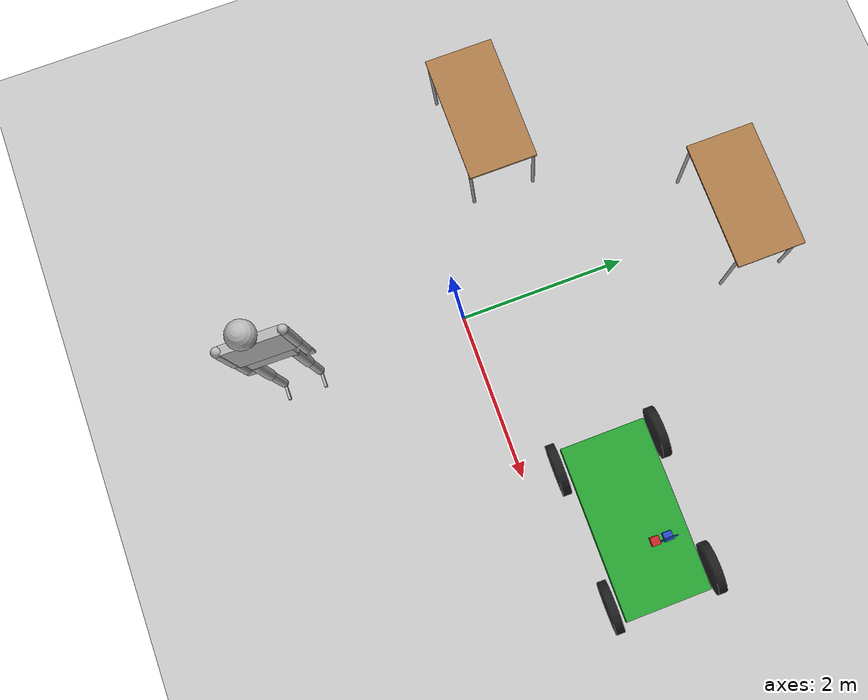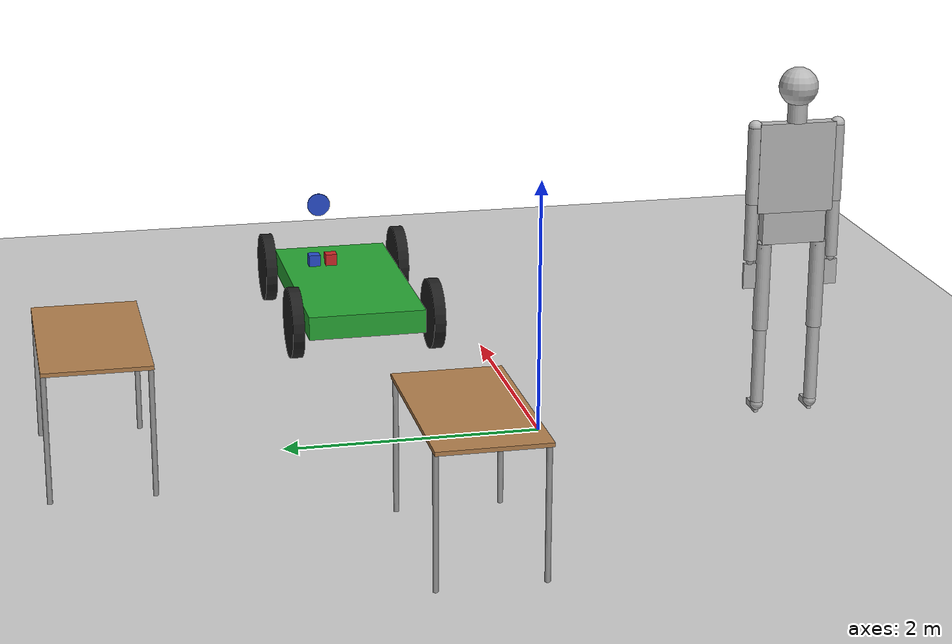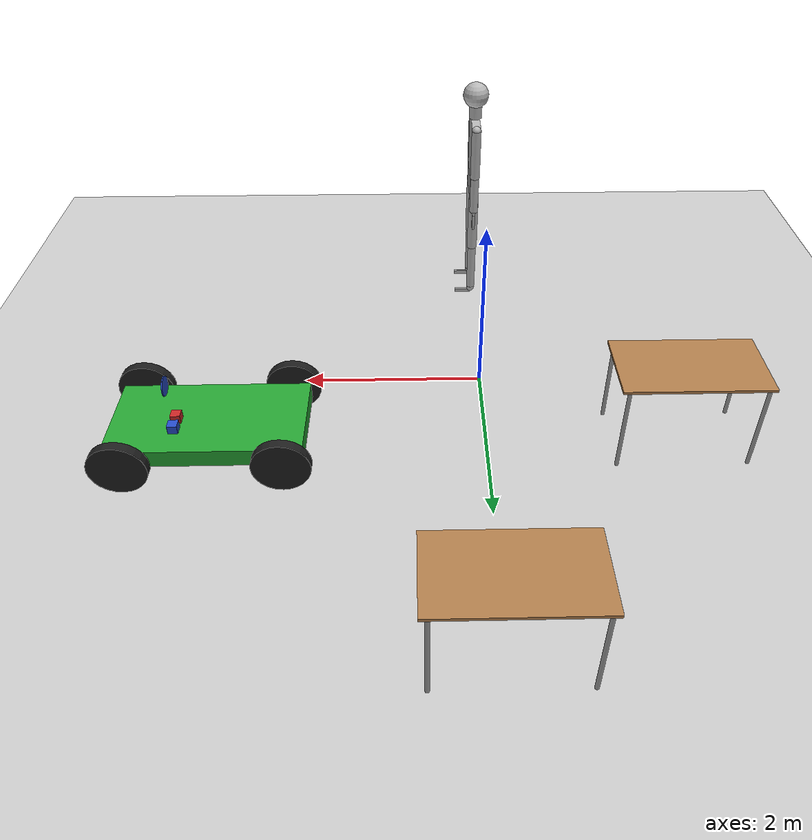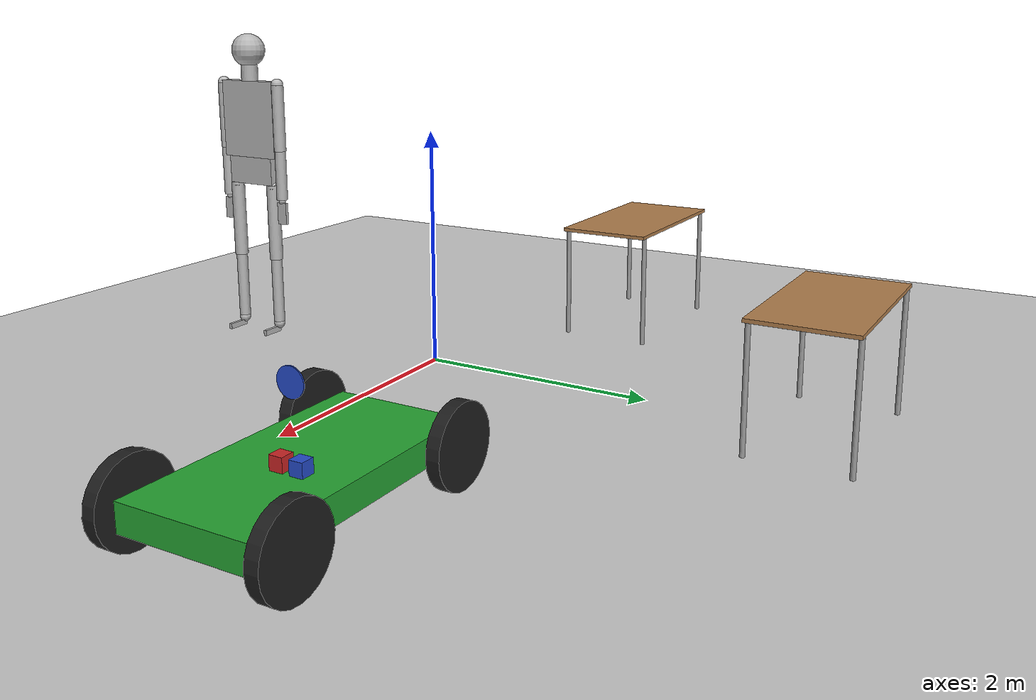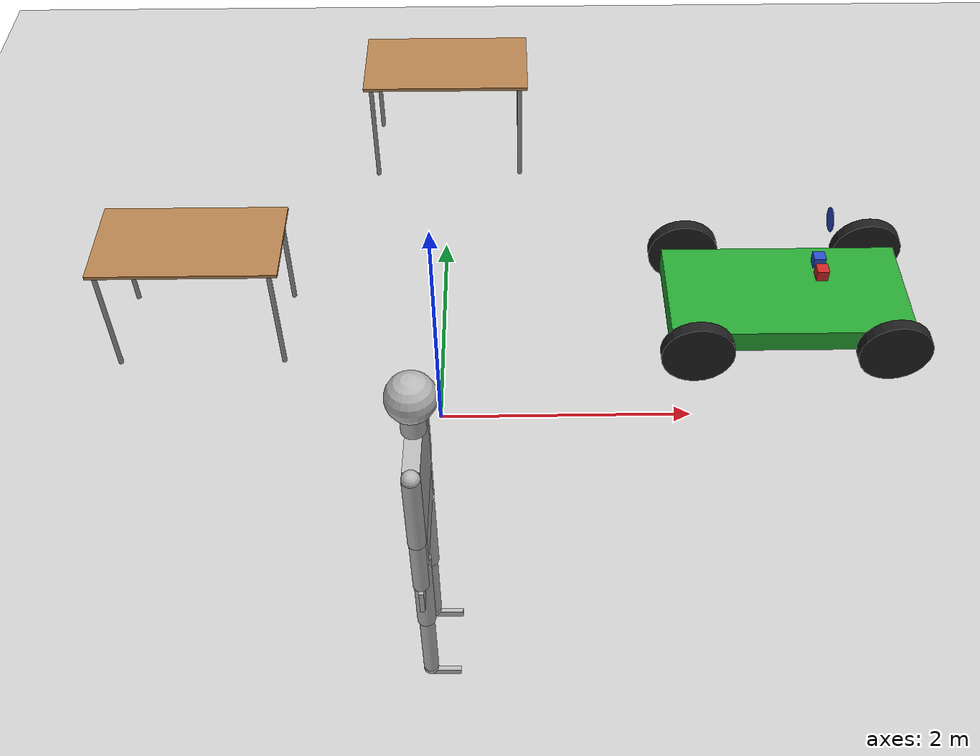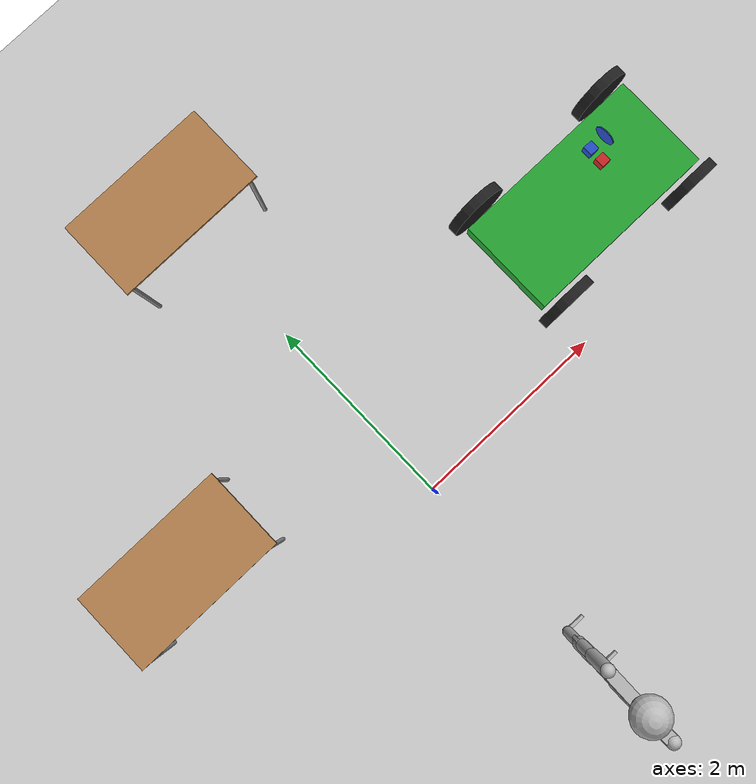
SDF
<sdf version="1.5">
 <world name="default">
  <light name="sun" type="directional">
   <pose>0 0 10 0 -0 0</pose>
   <diffuse>0.8 0.8 0.8 1</diffuse>
   <specular>0.2 0.2 0.2 1</specular>
   <attenuation>
    <range>1000</range>
    <constant>0.9</constant>
    <linear>0.01</linear>
    <quadratic>0.001</quadratic>
   </attenuation>
   <direction>-0.5 0.1 -0.9</direction>
  </light>
  <model name="ground_plane">
   <static>1</static>
   <link name="link">
    <collision name="collision">
     <laser_retro>50</laser_retro>
     <geometry><plane><normal>0 0 1</normal><size>100 100</size></plane></geometry>
     <surface><friction><ode><mu>100</mu><mu2>50</mu2></ode></friction></surface>
    </collision>
    <visual name="visual">
     <cast_shadows>0</cast_shadows>
     <geometry><plane><normal>0 0 1</normal><size>100 100</size></plane></geometry>
     <material>
      <script><uri>file://media/materials/scripts/gazebo.material</uri><name>Gazebo/Grey</name></script>
     </material>
    </visual>
   </link>
  </model>
  <physics name="default_physics" default="0" type="ode">
   <max_step_size>0.001</max_step_size>
   <real_time_factor>1</real_time_factor>
   <real_time_update_rate>1000</real_time_update_rate>
   <gravity>0 0 -9.8</gravity>
   <magnetic_field>5.5645e-06 2.28758e-05 -4.23884e-05</magnetic_field>
  </physics>
  <scene><ambient>0.4 0.4 0.4 1</ambient><background>0.7 0.7 0.7 1</background><shadows>1</shadows></scene>
  <audio><device>default</device></audio>
  <spherical_coordinates>
   <surface_model>EARTH_WGS84</surface_model>
   <latitude_deg>0</latitude_deg>
   <longitude_deg>0</longitude_deg>
   <elevation>0</elevation>
   <heading_deg>0</heading_deg>
  </spherical_coordinates>
  <model name="table">
   <static>1</static>
   <link name="link">
    <collision name="surface">
     <laser_retro>255</laser_retro>
     <pose>0 0 1 0 -0 0</pose>
     <geometry><box><size>1.5 0.8 0.03</size></box></geometry>
     <surface><friction><ode><mu>0.6</mu><mu2>0.6</mu2></ode></friction></surface>
    </collision>
    <visual name="visual1">
     <pose>0 0 1 0 -0 0</pose>
     <geometry><box><size>1.5 0.8 0.03</size></box></geometry>
     <material>
      <script><uri>file://media/materials/scripts/gazebo.material</uri><name>Gazebo/Wood</name></script>
     </material>
    </visual>
    <collision name="front_left_leg">
     <laser_retro>255</laser_retro>
     <pose>0.68 0.38 0.5 0 -0 0</pose>
     <geometry><cylinder><radius>0.02</radius><length>1</length></cylinder></geometry>
    </collision>
    <visual name="front_left_leg">
     <pose>0.68 0.38 0.5 0 -0 0</pose>
     <geometry><cylinder><radius>0.02</radius><length>1</length></cylinder></geometry>
     <material>
      <script><uri>file://media/materials/scripts/gazebo.material</uri><name>Gazebo/Grey</name></script>
     </material>
    </visual>
    <collision name="front_right_leg">
     <laser_retro>255</laser_retro>
     <pose>0.68 -0.38 0.5 0 -0 0</pose>
     <geometry><cylinder><radius>0.02</radius><length>1</length></cylinder></geometry>
    </collision>
    <visual name="front_right_leg">
     <laser_retro>255</laser_retro>
     <pose>0.68 -0.38 0.5 0 -0 0</pose>
     <geometry><cylinder><radius>0.02</radius><length>1</length></cylinder></geometry>
     <material>
      <script><uri>file://media/materials/scripts/gazebo.material</uri><name>Gazebo/Grey</name></script>
     </material>
    </visual>
    <collision name="back_right_leg">
     <laser_retro>255</laser_retro>
     <pose>-0.68 -0.38 0.5 0 -0 0</pose>
     <geometry><cylinder><radius>0.02</radius><length>1</length></cylinder></geometry>
    </collision>
    <visual name="back_right_leg">
     <pose>-0.68 -0.38 0.5 0 -0 0</pose>
     <geometry><cylinder><radius>0.02</radius><length>1</length></cylinder></geometry>
     <material>
      <script><uri>file://media/materials/scripts/gazebo.material</uri><name>Gazebo/Grey</name></script>
     </material>
    </visual>
    <collision name="back_left_leg">
     <laser_retro>255</laser_retro>
     <pose>-0.68 0.38 0.5 0 -0 0</pose>
     <geometry><cylinder><radius>0.02</radius><length>1</length></cylinder></geometry>
    </collision>
    <visual name="back_left_leg">
     <pose>-0.68 0.38 0.5 0 -0 0</pose>
     <geometry><cylinder><radius>0.02</radius><length>1</length></cylinder></geometry>
     <material>
      <script><uri>file://media/materials/scripts/gazebo.material</uri><name>Gazebo/Grey</name></script>
     </material>
    </visual>
   </link>
   <pose>-2 1 0 0 -0 0</pose>
  </model>
  <model name="table_0">
   <static>1</static>
   <link name="link">
    <collision name="surface">
     <laser_retro>255</laser_retro>
     <pose>0 0 1 0 -0 0</pose>
     <geometry><box><size>1.5 0.8 0.03</size></box></geometry>
     <surface><friction><ode><mu>0.6</mu><mu2>0.6</mu2></ode></friction></surface>
    </collision>
    <visual name="visual1">
     <pose>0 0 1 0 -0 0</pose>
     <geometry><box><size>1.5 0.8 0.03</size></box></geometry>
     <material>
      <script><uri>file://media/materials/scripts/gazebo.material</uri><name>Gazebo/Wood</name></script>
     </material>
    </visual>
    <collision name="front_left_leg">
     <laser_retro>255</laser_retro>
     <pose>0.68 0.38 0.5 0 -0 0</pose>
     <geometry><cylinder><radius>0.02</radius><length>1</length></cylinder></geometry>
    </collision>
    <visual name="front_left_leg">
     <pose>0.68 0.38 0.5 0 -0 0</pose>
     <geometry><cylinder><radius>0.02</radius><length>1</length></cylinder></geometry>
     <material>
      <script><uri>file://media/materials/scripts/gazebo.material</uri><name>Gazebo/Grey</name></script>
     </material>
    </visual>
    <collision name="front_right_leg">
     <laser_retro>255</laser_retro>
     <pose>0.68 -0.38 0.5 0 -0 0</pose>
     <geometry><cylinder><radius>0.02</radius><length>1</length></cylinder></geometry>
    </collision>
    <visual name="front_right_leg">
     <pose>0.68 -0.38 0.5 0 -0 0</pose>
     <geometry><cylinder><radius>0.02</radius><length>1</length></cylinder></geometry>
     <material>
      <script><uri>file://media/materials/scripts/gazebo.material</uri><name>Gazebo/Grey</name></script>
     </material>
    </visual>
    <collision name="back_right_leg">
     <laser_retro>255</laser_retro>
     <pose>-0.68 -0.38 0.5 0 -0 0</pose>
     <geometry><cylinder><radius>0.02</radius><length>1</length></cylinder></geometry>
    </collision>
    <visual name="back_right_leg">
     <pose>-0.68 -0.38 0.5 0 -0 0</pose>
     <geometry><cylinder><radius>0.02</radius><length>1</length></cylinder></geometry>
     <material>
      <script><uri>file://media/materials/scripts/gazebo.material</uri><name>Gazebo/Grey</name></script>
     </material>
    </visual>
    <collision name="back_left_leg">
     <laser_retro>255</laser_retro>
     <pose>-0.68 0.38 0.5 0 -0 0</pose>
     <geometry><cylinder><radius>0.02</radius><length>1</length></cylinder></geometry>
    </collision>
    <visual name="back_left_leg">
     <pose>-0.68 0.38 0.5 0 -0 0</pose>
     <geometry><cylinder><radius>0.02</radius><length>1</length></cylinder></geometry>
     <material>
      <script><uri>file://media/materials/scripts/gazebo.material</uri><name>Gazebo/Grey</name></script>
     </material>
    </visual>
   </link>
   <pose>0 3.40617 0 0 -0 0</pose>
  </model>
  <model name="car">
   <link name="chassis">
    <pose>0 0 0.3 0 -0 0</pose>
    <collision name="collision">
     <laser_retro>255</laser_retro>
     <geometry><box><size>2 1 0.2</size></box></geometry>
    </collision>
    <visual name="visual">
     <geometry><box><size>2 1 0.2</size></box></geometry>
     <material>
      <script><uri>file://media/materials/scripts/gazebo.material</uri><name>Gazebo/Green</name></script>
     </material>
    </visual>
    <inertial>
     <inertia><ixx>1</ixx><ixy>0</ixy><ixz>0</ixz><iyy>1</iyy><iyz>0</iyz><izz>1</izz></inertia>
     <mass>1</mass>
    </inertial>
   </link>
   <link name="front_left_wheel">
    <pose>0.8 0.6 0.3 0 1.5707 1.5707</pose>
    <collision name="collision">
     <laser_retro>255</laser_retro>
     <geometry><cylinder><radius>0.3</radius><length>0.1</length></cylinder></geometry>
    </collision>
    <visual name="visual">
     <geometry><cylinder><radius>0.3</radius><length>0.1</length></cylinder></geometry>
     <material>
      <script><uri>file://media/materials/scripts/gazebo.material</uri><name>Gazebo/Black</name></script>
     </material>
    </visual>
    <inertial>
     <inertia><ixx>1</ixx><ixy>0</ixy><ixz>0</ixz><iyy>1</iyy><iyz>0</iyz><izz>1</izz></inertia>
     <mass>1</mass>
    </inertial>
   </link>
   <link name="front_right_wheel">
    <pose>0.8 -0.6 0.3 0 1.5707 1.5707</pose>
    <collision name="collision">
     <laser_retro>255</laser_retro>
     <geometry><cylinder><radius>0.3</radius><length>0.1</length></cylinder></geometry>
    </collision>
    <visual name="visual">
     <geometry><cylinder><radius>0.3</radius><length>0.1</length></cylinder></geometry>
     <material>
      <script><uri>file://media/materials/scripts/gazebo.material</uri><name>Gazebo/Black</name></script>
     </material>
    </visual>
    <inertial>
     <inertia><ixx>1</ixx><ixy>0</ixy><ixz>0</ixz><iyy>1</iyy><iyz>0</iyz><izz>1</izz></inertia>
     <mass>1</mass>
    </inertial>
   </link>
   <link name="back_right_wheel">
    <pose>-0.8 -0.6 0.3 0 1.5707 1.5707</pose>
    <collision name="collision">
     <laser_retro>255</laser_retro>
     <geometry><cylinder><radius>0.3</radius><length>0.1</length></cylinder></geometry>
    </collision>
    <visual name="visual">
     <geometry><cylinder><radius>0.3</radius><length>0.1</length></cylinder></geometry>
     <material>
      <script><uri>file://media/materials/scripts/gazebo.material</uri><name>Gazebo/Black</name></script>
     </material>
    </visual>
    <inertial>
     <inertia><ixx>1</ixx><ixy>0</ixy><ixz>0</ixz><iyy>1</iyy><iyz>0</iyz><izz>1</izz></inertia>
     <mass>1</mass>
    </inertial>
   </link>
   <link name="back_left_wheel">
    <pose>-0.8 0.6 0.3 0 1.5707 1.5707</pose>
    <collision name="collision">
     <laser_retro>255</laser_retro>
     <geometry><cylinder><radius>0.3</radius><length>0.1</length></cylinder></geometry>
    </collision>
    <visual name="visual">
     <geometry><cylinder><radius>0.3</radius><length>0.1</length></cylinder></geometry>
     <material>
      <script><uri>file://media/materials/scripts/gazebo.material</uri><name>Gazebo/Black</name></script>
     </material>
    </visual>
    <inertial>
     <inertia><ixx>1</ixx><ixy>0</ixy><ixz>0</ixz><iyy>1</iyy><iyz>0</iyz><izz>1</izz></inertia>
     <mass>1</mass>
    </inertial>
   </link>
   <link name="gas_pedal">
    <pose>0.3 0.1 0.5 0 -0 0</pose>
    <collision name="collision">
     <laser_retro>255</laser_retro>
     <geometry><box><size>0.1 0.1 0.1</size></box></geometry>
    </collision>
    <visual name="visual">
     <geometry><box><size>0.1 0.1 0.1</size></box></geometry>
     <material>
      <script><uri>file://media/materials/scripts/gazebo.material</uri><name>Gazebo/Red</name></script>
     </material>
    </visual>
    <inertial>
     <inertia><ixx>1</ixx><ixy>0</ixy><ixz>0</ixz><iyy>1</iyy><iyz>0</iyz><izz>1</izz></inertia>
     <mass>1</mass>
    </inertial>
   </link>
   <link name="brake_pedal">
    <pose>0.3 0.25 0.5 0 -0 0</pose>
    <collision name="collision">
     <laser_retro>255</laser_retro>
     <geometry><box><size>0.1 0.1 0.1</size></box></geometry>
    </collision>
    <visual name="visual">
     <geometry><box><size>0.1 0.1 0.1</size></box></geometry>
     <material>
      <script><uri>file://media/materials/scripts/gazebo.material</uri><name>Gazebo/Blue</name></script>
     </material>
    </visual>
    <inertial>
     <inertia><ixx>1</ixx><ixy>0</ixy><ixz>0</ixz><iyy>1</iyy><iyz>0</iyz><izz>1</izz></inertia>
     <mass>1</mass>
    </inertial>
   </link>
   <link name="steering_wheel">
    <pose>0.3 0.2 1 0 1.5707 0</pose>
    <collision name="collision">
     <laser_retro>255</laser_retro>
     <geometry><cylinder><radius>0.1</radius><length>0.01</length></cylinder></geometry>
    </collision>
    <visual name="visual">
     <geometry><cylinder><radius>0.1</radius><length>0.01</length></cylinder></geometry>
     <material>
      <script><uri>file://media/materials/scripts/gazebo.material</uri><name>Gazebo/Blue</name></script>
     </material>
    </visual>
    <inertial>
     <inertia><ixx>1</ixx><ixy>0</ixy><ixz>0</ixz><iyy>1</iyy><iyz>0</iyz><izz>1</izz></inertia>
     <mass>1</mass>
    </inertial>
   </link>
   <joint name="gas_joint" type="prismatic">
    <parent>chassis</parent>
    <child>gas_pedal</child>
    <axis>
     <xyz>1 0 0</xyz>
     <limit><lower>0</lower><upper>0.2</upper></limit>
     <use_parent_model_frame>1</use_parent_model_frame>
     <dynamics><spring_reference>0</spring_reference><spring_stiffness>0</spring_stiffness></dynamics>
    </axis>
   </joint>
   <joint name="brake_joint" type="prismatic">
    <parent>chassis</parent>
    <child>brake_pedal</child>
    <axis>
     <xyz>1 0 0</xyz>
     <limit><lower>0</lower><upper>0.2</upper></limit>
     <use_parent_model_frame>1</use_parent_model_frame>
     <dynamics><spring_reference>0</spring_reference><spring_stiffness>0</spring_stiffness></dynamics>
    </axis>
   </joint>
   <joint name="steering_joint" type="revolute">
    <parent>chassis</parent>
    <child>steering_wheel</child>
    <axis>
     <xyz>1 0 0</xyz>
     <limit><lower>-7.853</lower><upper>7.853</upper></limit>
     <use_parent_model_frame>1</use_parent_model_frame>
     <dynamics><spring_reference>0</spring_reference><spring_stiffness>0</spring_stiffness></dynamics>
    </axis>
   </joint>
   <joint name="front_left_joint" type="revolute2">
    <parent>chassis</parent>
    <child>front_left_wheel</child>
    <axis>
     <xyz>0 0 1</xyz>
     <limit><lower>8.68776e-06</lower><upper>8.68776e-06</upper></limit>
     <use_parent_model_frame>1</use_parent_model_frame>
     <dynamics><spring_reference>0</spring_reference><spring_stiffness>0</spring_stiffness></dynamics>
    </axis>
    <axis2>
     <xyz>0 1 0</xyz>
     <use_parent_model_frame>1</use_parent_model_frame>
     <dynamics><spring_reference>0</spring_reference><spring_stiffness>0</spring_stiffness></dynamics>
    </axis2>
    <physics><ode><limit><cfm>0</cfm><erp>0.9</erp></limit></ode></physics>
   </joint>
   <joint name="front_right_joint" type="revolute2">
    <parent>chassis</parent>
    <child>front_right_wheel</child>
    <axis>
     <xyz>0 0 1</xyz>
     <limit><lower>8.68776e-06</lower><upper>8.68776e-06</upper></limit>
     <use_parent_model_frame>1</use_parent_model_frame>
     <dynamics><spring_reference>0</spring_reference><spring_stiffness>0</spring_stiffness></dynamics>
    </axis>
    <axis2>
     <xyz>0 1 0</xyz>
     <use_parent_model_frame>1</use_parent_model_frame>
     <dynamics><spring_reference>0</spring_reference><spring_stiffness>0</spring_stiffness></dynamics>
    </axis2>
    <physics><ode><limit><cfm>0</cfm><erp>0.9</erp></limit></ode></physics>
   </joint>
   <joint name="back_right_joint" type="revolute2">
    <parent>chassis</parent>
    <child>back_right_wheel</child>
    <axis>
     <xyz>0 0 1</xyz>
     <limit><lower>0</lower><upper>0</upper></limit>
     <use_parent_model_frame>1</use_parent_model_frame>
     <dynamics><spring_reference>0</spring_reference><spring_stiffness>0</spring_stiffness></dynamics>
    </axis>
    <axis2>
     <xyz>0 1 0</xyz>
     <use_parent_model_frame>1</use_parent_model_frame>
     <dynamics><spring_reference>0</spring_reference><spring_stiffness>0</spring_stiffness></dynamics>
    </axis2>
    <physics><ode><limit><cfm>0</cfm><erp>0.9</erp></limit></ode></physics>
   </joint>
   <joint name="back_left_joint" type="revolute2">
    <parent>chassis</parent>
    <child>back_left_wheel</child>
    <axis>
     <xyz>0 0 1</xyz>
     <limit><lower>0</lower><upper>0</upper></limit>
     <use_parent_model_frame>1</use_parent_model_frame>
     <dynamics><spring_reference>0</spring_reference><spring_stiffness>0</spring_stiffness></dynamics>
    </axis>
    <axis2>
     <xyz>0 1 0</xyz>
     <use_parent_model_frame>1</use_parent_model_frame>
     <dynamics><spring_reference>0</spring_reference><spring_stiffness>0</spring_stiffness></dynamics>
    </axis2>
    <physics><ode><limit><cfm>0</cfm><erp>0.9</erp></limit></ode></physics>
   </joint>
   <plugin name="vehicle" filename="libVehiclePlugin.so">
    <front_left>front_left_joint</front_left>
    <front_right>front_right_joint</front_right>
    <back_left>back_left_joint</back_left>
    <back_right>back_right_joint</back_right>
    <gas>gas_joint</gas>
    <brake>brake_joint</brake>
    <steering>steering_joint</steering>
    <front_power>10</front_power>
    <rear_power>10</rear_power>
    <tire_angle_range>0.5</tire_angle_range>
    <max_speed>10</max_speed>
    <aero_load>0.1</aero_load>
   </plugin>
   <pose>2.8752 0.999803 -0.002616 -0.000273 0.000907 0.000225</pose>
  </model>
  <model name="ragdoll">
   <pose>0.000156 -1.99998 1.39999 -2e-06 -0.000991 -0.014635</pose>
   <link name="hip">
    <inertial>
     <inertia><ixx>0.1</ixx><ixy>0</ixy><ixz>0</ixz><iyy>0.1</iyy><iyz>0</iyz><izz>0.1</izz></inertia>
     <mass>10</mass>
    </inertial>
    <collision name="hip_geom">
     <laser_retro>255</laser_retro>
     <pose>0 0 0.125 0 -0 0</pose>
     <geometry><box><size>0.1 0.5 0.25</size></box></geometry>
     <surface>
      <friction><ode><mu>-1</mu><mu2>-1</mu2><fdir1>0 0 0</fdir1><slip1>0</slip1><slip2>0</slip2></ode></friction>
      <bounce><restitution_coefficient>0</restitution_coefficient><threshold>100000</threshold></bounce>
      <contact>
       <ode>
        <soft_cfm>0</soft_cfm>
        <soft_erp>0.2</soft_erp>
        <kp>1e+12</kp>
        <kd>1</kd>
        <max_vel>0</max_vel>
        <min_depth>0.001</min_depth>
       </ode>
      </contact>
     </surface>
    </collision>
    <visual name="hip_geom_visual">
     <pose>0 0 0.125 0 -0 0</pose>
     <geometry><box><size>0.1 0.5 0.25</size></box></geometry>
    </visual>
    <gravity>0</gravity>
   </link>
   <link name="l_thigh_pan">
    <pose>0 0.22 0 0 -0 0</pose>
    <inertial>
     <inertia><ixx>0.01</ixx><ixy>0</ixy><ixz>0</ixz><iyy>0.01</iyy><iyz>0</iyz><izz>0.01</izz></inertia>
     <mass>1</mass>
    </inertial>
    <collision name="l_thigh_pan_geom">
     <laser_retro>255</laser_retro>
     <pose>0 0 -0.03 0 -0 0</pose>
     <geometry><sphere><radius>0.06</radius></sphere></geometry>
     <surface>
      <friction><ode><mu>-1</mu><mu2>-1</mu2><fdir1>0 0 0</fdir1><slip1>0</slip1><slip2>0</slip2></ode></friction>
      <bounce><restitution_coefficient>0</restitution_coefficient><threshold>100000</threshold></bounce>
      <contact>
       <ode>
        <soft_cfm>0</soft_cfm>
        <soft_erp>0.2</soft_erp>
        <kp>1e+12</kp>
        <kd>1</kd>
        <max_vel>0</max_vel>
        <min_depth>0.001</min_depth>
       </ode>
      </contact>
     </surface>
    </collision>
    <visual name="l_thigh_pan_geom_visual">
     <pose>0 0 -0.03 0 -0 0</pose>
     <geometry><sphere><radius>0.06</radius></sphere></geometry>
    </visual>
    <gravity>0</gravity>
   </link>
   <link name="l_thigh_lift">
    <pose>0 0.22 0 0 -0 0</pose>
    <inertial>
     <inertia><ixx>0.05</ixx><ixy>0</ixy><ixz>0</ixz><iyy>0.05</iyy><iyz>0</iyz><izz>0.05</izz></inertia>
     <mass>5</mass>
    </inertial>
    <collision name="l_thigh_lift_geom">
     <laser_retro>255</laser_retro>
     <pose>0 0 -0.35 0 -0 0</pose>
     <geometry><cylinder><radius>0.06</radius><length>0.7</length></cylinder></geometry>
     <surface>
      <friction><ode><mu>-1</mu><mu2>-1</mu2><fdir1>0 0 0</fdir1><slip1>0</slip1><slip2>0</slip2></ode></friction>
      <bounce><restitution_coefficient>0</restitution_coefficient><threshold>100000</threshold></bounce>
      <contact>
       <ode>
        <soft_cfm>0</soft_cfm>
        <soft_erp>0.2</soft_erp>
        <kp>1e+12</kp>
        <kd>1</kd>
        <max_vel>0</max_vel>
        <min_depth>0.001</min_depth>
       </ode>
      </contact>
     </surface>
    </collision>
    <visual name="l_thigh_lift_geom_visual">
     <pose>0 0 -0.35 0 -0 0</pose>
     <geometry><cylinder><radius>0.06</radius><length>0.7</length></cylinder></geometry>
    </visual>
    <gravity>0</gravity>
   </link>
   <link name="l_calf">
    <pose>0 0.22 -0.7 0 -0 0</pose>
    <inertial>
     <inertia><ixx>0.02</ixx><ixy>0</ixy><ixz>0</ixz><iyy>0.02</iyy><iyz>0</iyz><izz>0.02</izz></inertia>
     <mass>2</mass>
    </inertial>
    <collision name="l_calf_geom">
     <laser_retro>255</laser_retro>
     <pose>0 0 -0.3 0 -0 0</pose>
     <geometry><cylinder><radius>0.05</radius><length>0.6</length></cylinder></geometry>
     <surface>
      <friction><ode><mu>-1</mu><mu2>-1</mu2><fdir1>0 0 0</fdir1><slip1>0</slip1><slip2>0</slip2></ode></friction>
      <bounce><restitution_coefficient>0</restitution_coefficient><threshold>100000</threshold></bounce>
      <contact>
       <ode>
        <soft_cfm>0</soft_cfm>
        <soft_erp>0.2</soft_erp>
        <kp>1e+12</kp>
        <kd>1</kd>
        <max_vel>0</max_vel>
        <min_depth>0.001</min_depth>
       </ode>
      </contact>
     </surface>
    </collision>
    <visual name="l_calf_geom_visual">
     <pose>0 0 -0.3 0 -0 0</pose>
     <geometry><cylinder><radius>0.05</radius><length>0.6</length></cylinder></geometry>
    </visual>
    <gravity>0</gravity>
   </link>
   <link name="l_ankle">
    <pose>0 0.22 -1.325 0 -0 0</pose>
    <inertial>
     <inertia><ixx>0.01</ixx><ixy>0</ixy><ixz>0</ixz><iyy>0.01</iyy><iyz>0</iyz><izz>0.01</izz></inertia>
     <mass>1</mass>
    </inertial>
    <collision name="l_ankle_geom">
     <laser_retro>255</laser_retro>
     <geometry><sphere><radius>0.05</radius></sphere></geometry>
     <surface>
      <friction><ode><mu>-1</mu><mu2>-1</mu2><fdir1>0 0 0</fdir1><slip1>0</slip1><slip2>0</slip2></ode></friction>
      <bounce><restitution_coefficient>0</restitution_coefficient><threshold>100000</threshold></bounce>
      <contact>
       <ode>
        <soft_cfm>0</soft_cfm>
        <soft_erp>0.2</soft_erp>
        <kp>1e+12</kp>
        <kd>1</kd>
        <max_vel>0</max_vel>
        <min_depth>0.001</min_depth>
       </ode>
      </contact>
     </surface>
    </collision>
    <visual name="l_ankle_geom_visual"><geometry><sphere><radius>0.05</radius></sphere></geometry></visual>
    <gravity>0</gravity>
   </link>
   <link name="l_foot">
    <pose>0 0.22 -1.35 0 -0 0</pose>
    <inertial>
     <pose>0.1 0 0 0 -0 0</pose>
     <inertia><ixx>0.01</ixx><ixy>0</ixy><ixz>0</ixz><iyy>0.01</iyy><iyz>0</iyz><izz>0.01</izz></inertia>
     <mass>1</mass>
    </inertial>
    <collision name="l_foot_geom">
     <laser_retro>255</laser_retro>
     <pose>0.1 0 -0.025 0 -0 0</pose>
     <geometry><box><size>0.2 0.03 0.05</size></box></geometry>
     <surface>
      <friction><ode><mu>-1</mu><mu2>-1</mu2><fdir1>0 0 0</fdir1><slip1>0</slip1><slip2>0</slip2></ode></friction>
      <bounce><restitution_coefficient>0</restitution_coefficient><threshold>100000</threshold></bounce>
      <contact>
       <ode>
        <soft_cfm>0</soft_cfm>
        <soft_erp>0.2</soft_erp>
        <kp>1e+12</kp>
        <kd>1</kd>
        <max_vel>0</max_vel>
        <min_depth>0.001</min_depth>
       </ode>
      </contact>
     </surface>
    </collision>
    <visual name="l_foot_geom_visual">
     <pose>0.1 0 -0.025 0 -0 0</pose>
     <geometry><box><size>0.2 0.03 0.05</size></box></geometry>
    </visual>
   </link>
   <link name="r_thigh_pan">
    <pose>0 -0.22 0 0 -0 0</pose>
    <inertial>
     <inertia><ixx>0.01</ixx><ixy>0</ixy><ixz>0</ixz><iyy>0.01</iyy><iyz>0</iyz><izz>0.01</izz></inertia>
     <mass>1</mass>
    </inertial>
    <collision name="r_thigh_pan_geom">
     <laser_retro>255</laser_retro>
     <pose>0 0 -0.03 0 -0 0</pose>
     <geometry><sphere><radius>0.06</radius></sphere></geometry>
     <surface>
      <friction><ode><mu>-1</mu><mu2>-1</mu2><fdir1>0 0 0</fdir1><slip1>0</slip1><slip2>0</slip2></ode></friction>
      <bounce><restitution_coefficient>0</restitution_coefficient><threshold>100000</threshold></bounce>
      <contact>
       <ode>
        <soft_cfm>0</soft_cfm>
        <soft_erp>0.2</soft_erp>
        <kp>1e+12</kp>
        <kd>1</kd>
        <max_vel>0</max_vel>
        <min_depth>0.001</min_depth>
       </ode>
      </contact>
     </surface>
    </collision>
    <visual name="r_thigh_pan_geom_visual">
     <pose>0 0 -0.03 0 -0 0</pose>
     <geometry><sphere><radius>0.06</radius></sphere></geometry>
    </visual>
    <gravity>0</gravity>
   </link>
   <link name="r_thigh_lift">
    <pose>0 -0.22 0 0 -0 0</pose>
    <inertial>
     <inertia><ixx>0.05</ixx><ixy>0</ixy><ixz>0</ixz><iyy>0.05</iyy><iyz>0</iyz><izz>0.05</izz></inertia>
     <mass>5</mass>
    </inertial>
    <collision name="r_thigh_lift_geom">
     <laser_retro>255</laser_retro>
     <pose>0 0 -0.35 0 -0 0</pose>
     <geometry><cylinder><radius>0.06</radius><length>0.7</length></cylinder></geometry>
     <surface>
      <friction><ode><mu>-1</mu><mu2>-1</mu2><fdir1>0 0 0</fdir1><slip1>0</slip1><slip2>0</slip2></ode></friction>
      <bounce><restitution_coefficient>0</restitution_coefficient><threshold>100000</threshold></bounce>
      <contact>
       <ode>
        <soft_cfm>0</soft_cfm>
        <soft_erp>0.2</soft_erp>
        <kp>1e+12</kp>
        <kd>1</kd>
        <max_vel>0</max_vel>
        <min_depth>0.001</min_depth>
       </ode>
      </contact>
     </surface>
    </collision>
    <visual name="r_thigh_lift_geom_visual">
     <pose>0 0 -0.35 0 -0 0</pose>
     <geometry><cylinder><radius>0.06</radius><length>0.7</length></cylinder></geometry>
    </visual>
    <gravity>0</gravity>
   </link>
   <link name="r_calf">
    <pose>0 -0.22 -0.7 0 -0 0</pose>
    <inertial>
     <inertia><ixx>0.02</ixx><ixy>0</ixy><ixz>0</ixz><iyy>0.02</iyy><iyz>0</iyz><izz>0.02</izz></inertia>
     <mass>2</mass>
    </inertial>
    <collision name="r_calf_geom">
     <laser_retro>255</laser_retro>
     <pose>0 0 -0.3 0 -0 0</pose>
     <geometry><cylinder><radius>0.05</radius><length>0.6</length></cylinder></geometry>
     <surface>
      <friction><ode><mu>-1</mu><mu2>-1</mu2><fdir1>0 0 0</fdir1><slip1>0</slip1><slip2>0</slip2></ode></friction>
      <bounce><restitution_coefficient>0</restitution_coefficient><threshold>100000</threshold></bounce>
      <contact>
       <ode>
        <soft_cfm>0</soft_cfm>
        <soft_erp>0.2</soft_erp>
        <kp>1e+12</kp>
        <kd>1</kd>
        <max_vel>0</max_vel>
        <min_depth>0.001</min_depth>
       </ode>
      </contact>
     </surface>
    </collision>
    <visual name="r_calf_geom_visual">
     <pose>0 0 -0.3 0 -0 0</pose>
     <geometry><cylinder><radius>0.05</radius><length>0.6</length></cylinder></geometry>
    </visual>
    <gravity>0</gravity>
   </link>
   <link name="r_ankle">
    <pose>0 -0.22 -1.325 0 -0 0</pose>
    <inertial>
     <inertia><ixx>0.01</ixx><ixy>0</ixy><ixz>0</ixz><iyy>0.01</iyy><iyz>0</iyz><izz>0.01</izz></inertia>
     <mass>1</mass>
    </inertial>
    <collision name="r_ankle_geom">
     <laser_retro>255</laser_retro>
     <geometry><sphere><radius>0.05</radius></sphere></geometry>
     <surface>
      <friction><ode><mu>-1</mu><mu2>-1</mu2><fdir1>0 0 0</fdir1><slip1>0</slip1><slip2>0</slip2></ode></friction>
      <bounce><restitution_coefficient>0</restitution_coefficient><threshold>100000</threshold></bounce>
      <contact>
       <ode>
        <soft_cfm>0</soft_cfm>
        <soft_erp>0.2</soft_erp>
        <kp>1e+12</kp>
        <kd>1</kd>
        <max_vel>0</max_vel>
        <min_depth>0.001</min_depth>
       </ode>
      </contact>
     </surface>
    </collision>
    <visual name="r_ankle_geom_visual"><geometry><sphere><radius>0.05</radius></sphere></geometry></visual>
    <gravity>0</gravity>
   </link>
   <link name="r_foot">
    <pose>0 -0.22 -1.35 0 -0 0</pose>
    <inertial>
     <pose>0.1 0 0 0 -0 0</pose>
     <inertia><ixx>0.01</ixx><ixy>0</ixy><ixz>0</ixz><iyy>0.01</iyy><iyz>0</iyz><izz>0.01</izz></inertia>
     <mass>1</mass>
    </inertial>
    <collision name="r_foot_geom">
     <laser_retro>255</laser_retro>
     <pose>0.1 0 -0.025 0 -0 0</pose>
     <geometry><box><size>0.2 0.03 0.05</size></box></geometry>
     <surface>
      <friction><ode><mu>-1</mu><mu2>-1</mu2><fdir1>0 0 0</fdir1><slip1>0</slip1><slip2>0</slip2></ode></friction>
      <bounce><restitution_coefficient>0</restitution_coefficient><threshold>100000</threshold></bounce>
      <contact>
       <ode>
        <soft_cfm>0</soft_cfm>
        <soft_erp>0.2</soft_erp>
        <kp>1e+12</kp>
        <kd>1</kd>
        <max_vel>0</max_vel>
        <min_depth>0.001</min_depth>
       </ode>
      </contact>
     </surface>
    </collision>
    <visual name="r_foot_geom_visual">
     <pose>0.1 0 -0.025 0 -0 0</pose>
     <geometry><box><size>0.2 0.03 0.05</size></box></geometry>
    </visual>
   </link>
   <link name="torso">
    <pose>0 0 0.25 0 -0 0</pose>
    <inertial>
     <inertia><ixx>0.3</ixx><ixy>0</ixy><ixz>0</ixz><iyy>0.3</iyy><iyz>0</iyz><izz>0.3</izz></inertia>
     <mass>30</mass>
    </inertial>
    <collision name="torso_geom">
     <laser_retro>255</laser_retro>
     <pose>0 0 0.35 0 -0 0</pose>
     <geometry><box><size>0.1 0.6 0.7</size></box></geometry>
     <surface>
      <friction><ode><mu>-1</mu><mu2>-1</mu2><fdir1>0 0 0</fdir1><slip1>0</slip1><slip2>0</slip2></ode></friction>
      <bounce><restitution_coefficient>0</restitution_coefficient><threshold>100000</threshold></bounce>
      <contact>
       <ode>
        <soft_cfm>0</soft_cfm>
        <soft_erp>0.2</soft_erp>
        <kp>1e+12</kp>
        <kd>1</kd>
        <max_vel>0</max_vel>
        <min_depth>0.001</min_depth>
       </ode>
      </contact>
     </surface>
    </collision>
    <visual name="torso_geom_visual">
     <pose>0 0 0.35 0 -0 0</pose>
     <geometry><box><size>0.1 0.6 0.7</size></box></geometry>
    </visual>
    <gravity>0</gravity>
   </link>
   <link name="l_shoulder">
    <pose>0 0.3275 0.9225 0 -0 0</pose>
    <inertial>
     <inertia><ixx>0.01</ixx><ixy>0</ixy><ixz>0</ixz><iyy>0.01</iyy><iyz>0</iyz><izz>0.01</izz></inertia>
     <mass>1</mass>
    </inertial>
    <collision name="l_shoulder_geom">
     <laser_retro>255</laser_retro>
     <geometry><sphere><radius>0.055</radius></sphere></geometry>
     <surface>
      <friction><ode><mu>-1</mu><mu2>-1</mu2><fdir1>0 0 0</fdir1><slip1>0</slip1><slip2>0</slip2></ode></friction>
      <bounce><restitution_coefficient>0</restitution_coefficient><threshold>100000</threshold></bounce>
      <contact>
       <ode>
        <soft_cfm>0</soft_cfm>
        <soft_erp>0.2</soft_erp>
        <kp>1e+12</kp>
        <kd>1</kd>
        <max_vel>0</max_vel>
        <min_depth>0.001</min_depth>
       </ode>
      </contact>
     </surface>
    </collision>
    <visual name="l_shoulder_geom_visual"><geometry><sphere><radius>0.055</radius></sphere></geometry></visual>
    <gravity>0</gravity>
   </link>
   <link name="l_upper_arm">
    <pose>0 0.3275 0.9225 0 -0 0</pose>
    <inertial>
     <inertia><ixx>0.02</ixx><ixy>0</ixy><ixz>0</ixz><iyy>0.02</iyy><iyz>0</iyz><izz>0.02</izz></inertia>
     <mass>2</mass>
    </inertial>
    <collision name="l_upper_arm_geom">
     <laser_retro>255</laser_retro>
     <pose>0 0 -0.3 0 -0 0</pose>
     <geometry><cylinder><radius>0.055</radius><length>0.6</length></cylinder></geometry>
     <surface>
      <friction><ode><mu>-1</mu><mu2>-1</mu2><fdir1>0 0 0</fdir1><slip1>0</slip1><slip2>0</slip2></ode></friction>
      <bounce><restitution_coefficient>0</restitution_coefficient><threshold>100000</threshold></bounce>
      <contact>
       <ode>
        <soft_cfm>0</soft_cfm>
        <soft_erp>0.2</soft_erp>
        <kp>1e+12</kp>
        <kd>1</kd>
        <max_vel>0</max_vel>
        <min_depth>0.001</min_depth>
       </ode>
      </contact>
     </surface>
    </collision>
    <visual name="l_upper_arm_geom_visual">
     <pose>0 0 -0.3 0 -0 0</pose>
     <geometry><cylinder><radius>0.055</radius><length>0.6</length></cylinder></geometry>
    </visual>
    <gravity>0</gravity>
   </link>
   <link name="l_forearm">
    <pose>0 0.3275 0.3225 0 -0 0</pose>
    <inertial>
     <inertia><ixx>0.01</ixx><ixy>0</ixy><ixz>0</ixz><iyy>0.01</iyy><iyz>0</iyz><izz>0.01</izz></inertia>
     <mass>1</mass>
    </inertial>
    <collision name="l_forearm_geom">
     <laser_retro>255</laser_retro>
     <pose>0 0 -0.225 0 -0 0</pose>
     <geometry><cylinder><radius>0.05</radius><length>0.45</length></cylinder></geometry>
     <surface>
      <friction><ode><mu>-1</mu><mu2>-1</mu2><fdir1>0 0 0</fdir1><slip1>0</slip1><slip2>0</slip2></ode></friction>
      <bounce><restitution_coefficient>0</restitution_coefficient><threshold>100000</threshold></bounce>
      <contact>
       <ode>
        <soft_cfm>0</soft_cfm>
        <soft_erp>0.2</soft_erp>
        <kp>1e+12</kp>
        <kd>1</kd>
        <max_vel>0</max_vel>
        <min_depth>0.001</min_depth>
       </ode>
      </contact>
     </surface>
    </collision>
    <visual name="l_forearm_geom_visual">
     <pose>0 0 -0.225 0 -0 0</pose>
     <geometry><cylinder><radius>0.05</radius><length>0.45</length></cylinder></geometry>
    </visual>
    <gravity>0</gravity>
   </link>
   <link name="l_wrist">
    <pose>0 0.3275 -0.1425 0 -0 0</pose>
    <inertial>
     <inertia><ixx>0.01</ixx><ixy>0</ixy><ixz>0</ixz><iyy>0.01</iyy><iyz>0</iyz><izz>0.01</izz></inertia>
     <mass>1</mass>
    </inertial>
    <collision name="l_wrist_geom">
     <laser_retro>255</laser_retro>
     <geometry><sphere><radius>0.03</radius></sphere></geometry>
     <surface>
      <friction><ode><mu>-1</mu><mu2>-1</mu2><fdir1>0 0 0</fdir1><slip1>0</slip1><slip2>0</slip2></ode></friction>
      <bounce><restitution_coefficient>0</restitution_coefficient><threshold>100000</threshold></bounce>
      <contact>
       <ode>
        <soft_cfm>0</soft_cfm>
        <soft_erp>0.2</soft_erp>
        <kp>1e+12</kp>
        <kd>1</kd>
        <max_vel>0</max_vel>
        <min_depth>0.001</min_depth>
       </ode>
      </contact>
     </surface>
    </collision>
    <visual name="l_wrist_geom_visual"><geometry><sphere><radius>0.03</radius></sphere></geometry></visual>
    <gravity>0</gravity>
   </link>
   <link name="l_hand">
    <pose>0 0.3275 -0.1575 0 -0 0</pose>
    <inertial>
     <inertia><ixx>0.01</ixx><ixy>0</ixy><ixz>0</ixz><iyy>0.01</iyy><iyz>0</iyz><izz>0.01</izz></inertia>
     <mass>1</mass>
    </inertial>
    <collision name="l_hand_geom">
     <laser_retro>255</laser_retro>
     <pose>0 0 -0.1 0 -0 0</pose>
     <geometry><box><size>0.03 0.1 0.2</size></box></geometry>
     <surface>
      <friction><ode><mu>-1</mu><mu2>-1</mu2><fdir1>0 0 0</fdir1><slip1>0</slip1><slip2>0</slip2></ode></friction>
      <bounce><restitution_coefficient>0</restitution_coefficient><threshold>100000</threshold></bounce>
      <contact>
       <ode>
        <soft_cfm>0</soft_cfm>
        <soft_erp>0.2</soft_erp>
        <kp>1e+12</kp>
        <kd>1</kd>
        <max_vel>0</max_vel>
        <min_depth>0.001</min_depth>
       </ode>
      </contact>
     </surface>
    </collision>
    <visual name="l_hand_geom_visual">
     <pose>0 0 -0.1 0 -0 0</pose>
     <geometry><box><size>0.03 0.1 0.2</size></box></geometry>
    </visual>
    <gravity>0</gravity>
   </link>
   <link name="neck">
    <pose>0 0 0.95 0 -0 0</pose>
    <inertial>
     <inertia><ixx>0.01</ixx><ixy>0</ixy><ixz>0</ixz><iyy>0.01</iyy><iyz>0</iyz><izz>0.01</izz></inertia>
     <mass>1</mass>
    </inertial>
    <collision name="neck_geom">
     <laser_retro>255</laser_retro>
     <pose>0 0 0.1 0 -0 0</pose>
     <geometry><cylinder><radius>0.075</radius><length>0.2</length></cylinder></geometry>
     <surface>
      <friction><ode><mu>-1</mu><mu2>-1</mu2><fdir1>0 0 0</fdir1><slip1>0</slip1><slip2>0</slip2></ode></friction>
      <bounce><restitution_coefficient>0</restitution_coefficient><threshold>100000</threshold></bounce>
      <contact>
       <ode>
        <soft_cfm>0</soft_cfm>
        <soft_erp>0.2</soft_erp>
        <kp>1e+12</kp>
        <kd>1</kd>
        <max_vel>0</max_vel>
        <min_depth>0.001</min_depth>
       </ode>
      </contact>
     </surface>
    </collision>
    <visual name="neck_geom_visual">
     <pose>0 0 0.1 0 -0 0</pose>
     <geometry><cylinder><radius>0.075</radius><length>0.2</length></cylinder></geometry>
    </visual>
    <gravity>0</gravity>
   </link>
   <link name="head">
    <pose>0 0 1.225 0 -0 0</pose>
    <inertial>
     <inertia><ixx>0.1</ixx><ixy>0</ixy><ixz>0</ixz><iyy>0.1</iyy><iyz>0</iyz><izz>0.1</izz></inertia>
     <mass>10</mass>
    </inertial>
    <collision name="head_geom">
     <laser_retro>255</laser_retro>
     <geometry><sphere><radius>0.15</radius></sphere></geometry>
     <surface>
      <friction><ode><mu>-1</mu><mu2>-1</mu2><fdir1>0 0 0</fdir1><slip1>0</slip1><slip2>0</slip2></ode></friction>
      <bounce><restitution_coefficient>0</restitution_coefficient><threshold>100000</threshold></bounce>
      <contact>
       <ode>
        <soft_cfm>0</soft_cfm>
        <soft_erp>0.2</soft_erp>
        <kp>1e+12</kp>
        <kd>1</kd>
        <max_vel>0</max_vel>
        <min_depth>0.001</min_depth>
       </ode>
      </contact>
     </surface>
    </collision>
    <visual name="head_geom_visual"><geometry><sphere><radius>0.15</radius></sphere></geometry></visual>
    <gravity>0</gravity>
   </link>
   <link name="r_shoulder">
    <pose>0 -0.3275 0.9225 0 -0 0</pose>
    <inertial>
     <inertia><ixx>0.01</ixx><ixy>0</ixy><ixz>0</ixz><iyy>0.01</iyy><iyz>0</iyz><izz>0.01</izz></inertia>
     <mass>1</mass>
    </inertial>
    <collision name="r_shoulder_geom">
     <laser_retro>255</laser_retro>
     <geometry><sphere><radius>0.055</radius></sphere></geometry>
     <surface>
      <friction><ode><mu>-1</mu><mu2>-1</mu2><fdir1>0 0 0</fdir1><slip1>0</slip1><slip2>0</slip2></ode></friction>
      <bounce><restitution_coefficient>0</restitution_coefficient><threshold>100000</threshold></bounce>
      <contact>
       <ode>
        <soft_cfm>0</soft_cfm>
        <soft_erp>0.2</soft_erp>
        <kp>1e+12</kp>
        <kd>1</kd>
        <max_vel>0</max_vel>
        <min_depth>0.001</min_depth>
       </ode>
      </contact>
     </surface>
    </collision>
    <visual name="r_shoulder_geom_visual"><geometry><sphere><radius>0.055</radius></sphere></geometry></visual>
    <gravity>0</gravity>
   </link>
   <link name="r_upper_arm">
    <pose>0 -0.3275 0.9225 0 -0 0</pose>
    <inertial>
     <inertia><ixx>0.02</ixx><ixy>0</ixy><ixz>0</ixz><iyy>0.02</iyy><iyz>0</iyz><izz>0.02</izz></inertia>
     <mass>2</mass>
    </inertial>
    <collision name="r_upper_arm_geom">
     <laser_retro>255</laser_retro>
     <pose>0 0 -0.3 0 -0 0</pose>
     <geometry><cylinder><radius>0.055</radius><length>0.6</length></cylinder></geometry>
     <surface>
      <friction><ode><mu>-1</mu><mu2>-1</mu2><fdir1>0 0 0</fdir1><slip1>0</slip1><slip2>0</slip2></ode></friction>
      <bounce><restitution_coefficient>0</restitution_coefficient><threshold>100000</threshold></bounce>
      <contact>
       <ode>
        <soft_cfm>0</soft_cfm>
        <soft_erp>0.2</soft_erp>
        <kp>1e+12</kp>
        <kd>1</kd>
        <max_vel>0</max_vel>
        <min_depth>0.001</min_depth>
       </ode>
      </contact>
     </surface>
    </collision>
    <visual name="r_upper_arm_geom_visual">
     <pose>0 0 -0.3 0 -0 0</pose>
     <geometry><cylinder><radius>0.055</radius><length>0.6</length></cylinder></geometry>
    </visual>
    <gravity>0</gravity>
   </link>
   <link name="r_forearm">
    <pose>0 -0.3275 0.3225 0 -0 0</pose>
    <inertial>
     <inertia><ixx>0.01</ixx><ixy>0</ixy><ixz>0</ixz><iyy>0.01</iyy><iyz>0</iyz><izz>0.01</izz></inertia>
     <mass>1</mass>
    </inertial>
    <collision name="r_forearm_geom">
     <laser_retro>255</laser_retro>
     <pose>0 0 -0.225 0 -0 0</pose>
     <geometry><cylinder><radius>0.05</radius><length>0.45</length></cylinder></geometry>
     <surface>
      <friction><ode><mu>-1</mu><mu2>-1</mu2><fdir1>0 0 0</fdir1><slip1>0</slip1><slip2>0</slip2></ode></friction>
      <bounce><restitution_coefficient>0</restitution_coefficient><threshold>100000</threshold></bounce>
      <contact>
       <ode>
        <soft_cfm>0</soft_cfm>
        <soft_erp>0.2</soft_erp>
        <kp>1e+12</kp>
        <kd>1</kd>
        <max_vel>0</max_vel>
        <min_depth>0.001</min_depth>
       </ode>
      </contact>
     </surface>
    </collision>
    <visual name="r_forearm_geom_visual">
     <pose>0 0 -0.225 0 -0 0</pose>
     <geometry><cylinder><radius>0.05</radius><length>0.45</length></cylinder></geometry>
    </visual>
    <gravity>0</gravity>
   </link>
   <link name="r_wrist">
    <pose>0 -0.3275 -0.1425 0 -0 0</pose>
    <inertial>
     <inertia><ixx>0.01</ixx><ixy>0</ixy><ixz>0</ixz><iyy>0.01</iyy><iyz>0</iyz><izz>0.01</izz></inertia>
     <mass>1</mass>
    </inertial>
    <collision name="r_wrist_geom">
     <laser_retro>255</laser_retro>
     <geometry><sphere><radius>0.03</radius></sphere></geometry>
     <surface>
      <friction><ode><mu>-1</mu><mu2>-1</mu2><fdir1>0 0 0</fdir1><slip1>0</slip1><slip2>0</slip2></ode></friction>
      <bounce><restitution_coefficient>0</restitution_coefficient><threshold>100000</threshold></bounce>
      <contact>
       <ode>
        <soft_cfm>0</soft_cfm>
        <soft_erp>0.2</soft_erp>
        <kp>1e+12</kp>
        <kd>1</kd>
        <max_vel>0</max_vel>
        <min_depth>0.001</min_depth>
       </ode>
      </contact>
     </surface>
    </collision>
    <visual name="r_wrist_geom_visual"><geometry><sphere><radius>0.03</radius></sphere></geometry></visual>
    <gravity>0</gravity>
   </link>
   <link name="r_hand">
    <pose>0 -0.3275 -0.1575 0 -0 0</pose>
    <inertial>
     <inertia><ixx>0.01</ixx><ixy>0</ixy><ixz>0</ixz><iyy>0.01</iyy><iyz>0</iyz><izz>0.01</izz></inertia>
     <mass>1</mass>
    </inertial>
    <collision name="r_hand_geom">
     <laser_retro>255</laser_retro>
     <pose>0 0 -0.1 0 -0 0</pose>
     <geometry><box><size>0.03 0.1 0.2</size></box></geometry>
     <surface>
      <friction><ode><mu>-1</mu><mu2>-1</mu2><fdir1>0 0 0</fdir1><slip1>0</slip1><slip2>0</slip2></ode></friction>
      <bounce><restitution_coefficient>0</restitution_coefficient><threshold>100000</threshold></bounce>
      <contact>
       <ode>
        <soft_cfm>0</soft_cfm>
        <soft_erp>0.2</soft_erp>
        <kp>1e+12</kp>
        <kd>1</kd>
        <max_vel>0</max_vel>
        <min_depth>0.001</min_depth>
       </ode>
      </contact>
     </surface>
    </collision>
    <visual name="r_hand_geom_visual">
     <pose>0 0 -0.1 0 -0 0</pose>
     <geometry><box><size>0.03 0.1 0.2</size></box></geometry>
    </visual>
    <gravity>0</gravity>
   </link>
   <joint name="l_thigh_pan_joint" type="revolute">
    <parent>hip</parent>
    <child>l_thigh_pan</child>
    <axis>
     <dynamics>
      <damping>0</damping>
      <friction>0</friction>
      <spring_reference>0</spring_reference>
      <spring_stiffness>0</spring_stiffness>
     </dynamics>
     <limit><lower>-1.5708</lower><upper>1.5708</upper><effort>0</effort><velocity>0</velocity></limit>
     <xyz>0 0 1</xyz>
     <use_parent_model_frame>1</use_parent_model_frame>
    </axis>
   </joint>
   <joint name="l_thigh_lift_joint" type="revolute">
    <parent>l_thigh_pan</parent>
    <child>l_thigh_lift</child>
    <axis>
     <dynamics>
      <damping>0</damping>
      <friction>0</friction>
      <spring_reference>0</spring_reference>
      <spring_stiffness>0</spring_stiffness>
     </dynamics>
     <limit><lower>-1.5708</lower><upper>1.5708</upper><effort>0</effort><velocity>0</velocity></limit>
     <xyz>0 1 0</xyz>
     <use_parent_model_frame>1</use_parent_model_frame>
    </axis>
   </joint>
   <joint name="l_calf_joint" type="revolute">
    <parent>l_thigh_lift</parent>
    <child>l_calf</child>
    <axis>
     <dynamics>
      <damping>0</damping>
      <friction>0</friction>
      <spring_reference>0</spring_reference>
      <spring_stiffness>0</spring_stiffness>
     </dynamics>
     <limit><lower>-1.5708</lower><upper>1.5708</upper><effort>0</effort><velocity>0</velocity></limit>
     <xyz>0 1 0</xyz>
     <use_parent_model_frame>1</use_parent_model_frame>
    </axis>
   </joint>
   <joint name="l_ankle_joint" type="revolute">
    <parent>l_calf</parent>
    <child>l_ankle</child>
    <axis>
     <dynamics>
      <damping>0</damping>
      <friction>0</friction>
      <spring_reference>0</spring_reference>
      <spring_stiffness>0</spring_stiffness>
     </dynamics>
     <limit><lower>-1.5708</lower><upper>1.5708</upper><effort>0</effort><velocity>0</velocity></limit>
     <xyz>0 1 0</xyz>
     <use_parent_model_frame>1</use_parent_model_frame>
    </axis>
   </joint>
   <joint name="l_foot_joint" type="revolute">
    <parent>l_ankle</parent>
    <child>l_foot</child>
    <axis>
     <dynamics>
      <damping>0</damping>
      <friction>0</friction>
      <spring_reference>0</spring_reference>
      <spring_stiffness>0</spring_stiffness>
     </dynamics>
     <limit><lower>-1.5708</lower><upper>1.5708</upper><effort>0</effort><velocity>0</velocity></limit>
     <xyz>1 0 0</xyz>
     <use_parent_model_frame>1</use_parent_model_frame>
    </axis>
   </joint>
   <joint name="r_thigh_pan_joint" type="revolute">
    <parent>hip</parent>
    <child>r_thigh_pan</child>
    <axis>
     <dynamics>
      <damping>0</damping>
      <friction>0</friction>
      <spring_reference>0</spring_reference>
      <spring_stiffness>0</spring_stiffness>
     </dynamics>
     <limit><lower>-1.5708</lower><upper>1.5708</upper><effort>0</effort><velocity>0</velocity></limit>
     <xyz>0 0 1</xyz>
     <use_parent_model_frame>1</use_parent_model_frame>
    </axis>
   </joint>
   <joint name="r_thigh_lift_joint" type="revolute">
    <parent>r_thigh_pan</parent>
    <child>r_thigh_lift</child>
    <axis>
     <dynamics>
      <damping>0</damping>
      <friction>0</friction>
      <spring_reference>0</spring_reference>
      <spring_stiffness>0</spring_stiffness>
     </dynamics>
     <limit><lower>-1.5708</lower><upper>1.5708</upper><effort>0</effort><velocity>0</velocity></limit>
     <xyz>0 1 0</xyz>
     <use_parent_model_frame>1</use_parent_model_frame>
    </axis>
   </joint>
   <joint name="r_calf_joint" type="revolute">
    <parent>r_thigh_lift</parent>
    <child>r_calf</child>
    <axis>
     <dynamics>
      <damping>0</damping>
      <friction>0</friction>
      <spring_reference>0</spring_reference>
      <spring_stiffness>0</spring_stiffness>
     </dynamics>
     <limit><lower>-1.5708</lower><upper>1.5708</upper><effort>0</effort><velocity>0</velocity></limit>
     <xyz>0 1 0</xyz>
     <use_parent_model_frame>1</use_parent_model_frame>
    </axis>
   </joint>
   <joint name="r_ankle_joint" type="revolute">
    <parent>r_calf</parent>
    <child>r_ankle</child>
    <axis>
     <dynamics>
      <damping>0</damping>
      <friction>0</friction>
      <spring_reference>0</spring_reference>
      <spring_stiffness>0</spring_stiffness>
     </dynamics>
     <limit><lower>-1.5708</lower><upper>1.5708</upper><effort>0</effort><velocity>0</velocity></limit>
     <xyz>0 1 0</xyz>
     <use_parent_model_frame>1</use_parent_model_frame>
    </axis>
   </joint>
   <joint name="r_foot_joint" type="revolute">
    <parent>r_ankle</parent>
    <child>r_foot</child>
    <axis>
     <dynamics>
      <damping>0</damping>
      <friction>0</friction>
      <spring_reference>0</spring_reference>
      <spring_stiffness>0</spring_stiffness>
     </dynamics>
     <limit><lower>-1.5708</lower><upper>1.5708</upper><effort>0</effort><velocity>0</velocity></limit>
     <xyz>1 0 0</xyz>
     <use_parent_model_frame>1</use_parent_model_frame>
    </axis>
   </joint>
   <joint name="torso_joint" type="revolute">
    <parent>hip</parent>
    <child>torso</child>
    <axis>
     <dynamics>
      <damping>0</damping>
      <friction>0</friction>
      <spring_reference>0</spring_reference>
      <spring_stiffness>0</spring_stiffness>
     </dynamics>
     <limit><lower>-1.5708</lower><upper>1.5708</upper><effort>0</effort><velocity>0</velocity></limit>
     <xyz>0 1 0</xyz>
     <use_parent_model_frame>1</use_parent_model_frame>
    </axis>
   </joint>
   <joint name="l_shoulder_joint" type="revolute">
    <parent>torso</parent>
    <child>l_shoulder</child>
    <axis>
     <dynamics>
      <damping>0</damping>
      <friction>0</friction>
      <spring_reference>0</spring_reference>
      <spring_stiffness>0</spring_stiffness>
     </dynamics>
     <limit><lower>-1.5708</lower><upper>1.5708</upper><effort>0</effort><velocity>0</velocity></limit>
     <xyz>1 0 0</xyz>
     <use_parent_model_frame>1</use_parent_model_frame>
    </axis>
   </joint>
   <joint name="l_upper_arm_joint" type="revolute">
    <parent>l_shoulder</parent>
    <child>l_upper_arm</child>
    <axis>
     <dynamics>
      <damping>0</damping>
      <friction>0</friction>
      <spring_reference>0</spring_reference>
      <spring_stiffness>0</spring_stiffness>
     </dynamics>
     <limit><lower>-1.5708</lower><upper>1.5708</upper><effort>0</effort><velocity>0</velocity></limit>
     <xyz>0 1 0</xyz>
     <use_parent_model_frame>1</use_parent_model_frame>
    </axis>
   </joint>
   <joint name="l_forearm_joint" type="revolute">
    <parent>l_upper_arm</parent>
    <child>l_forearm</child>
    <axis>
     <dynamics>
      <damping>0</damping>
      <friction>0</friction>
      <spring_reference>0</spring_reference>
      <spring_stiffness>0</spring_stiffness>
     </dynamics>
     <limit><lower>-1.5708</lower><upper>1.5708</upper><effort>0</effort><velocity>0</velocity></limit>
     <xyz>0 1 0</xyz>
     <use_parent_model_frame>1</use_parent_model_frame>
    </axis>
   </joint>
   <joint name="l_wrist_joint" type="revolute">
    <parent>l_forearm</parent>
    <child>l_wrist</child>
    <axis>
     <dynamics>
      <damping>0</damping>
      <friction>0</friction>
      <spring_reference>0</spring_reference>
      <spring_stiffness>0</spring_stiffness>
     </dynamics>
     <limit><lower>-1.5708</lower><upper>1.5708</upper><effort>0</effort><velocity>0</velocity></limit>
     <xyz>0 1 0</xyz>
     <use_parent_model_frame>1</use_parent_model_frame>
    </axis>
   </joint>
   <joint name="l_hand_joint" type="revolute">
    <parent>l_wrist</parent>
    <child>l_hand</child>
    <axis>
     <dynamics>
      <damping>0</damping>
      <friction>0</friction>
      <spring_reference>0</spring_reference>
      <spring_stiffness>0</spring_stiffness>
     </dynamics>
     <limit><lower>-1.5708</lower><upper>1.5708</upper><effort>0</effort><velocity>0</velocity></limit>
     <xyz>0 1 0</xyz>
     <use_parent_model_frame>1</use_parent_model_frame>
    </axis>
   </joint>
   <joint name="neck_joint" type="revolute">
    <parent>torso</parent>
    <child>neck</child>
    <axis>
     <dynamics>
      <damping>0</damping>
      <friction>0</friction>
      <spring_reference>0</spring_reference>
      <spring_stiffness>0</spring_stiffness>
     </dynamics>
     <limit><lower>-1.5708</lower><upper>1.5708</upper><effort>0</effort><velocity>0</velocity></limit>
     <xyz>0 0 1</xyz>
     <use_parent_model_frame>1</use_parent_model_frame>
    </axis>
   </joint>
   <joint name="head_joint" type="revolute">
    <parent>neck</parent>
    <child>head</child>
    <axis>
     <dynamics>
      <damping>0</damping>
      <friction>0</friction>
      <spring_reference>0</spring_reference>
      <spring_stiffness>0</spring_stiffness>
     </dynamics>
     <limit><lower>-1.5708</lower><upper>1.5708</upper><effort>0</effort><velocity>0</velocity></limit>
     <xyz>0 1 0</xyz>
     <use_parent_model_frame>1</use_parent_model_frame>
    </axis>
   </joint>
   <joint name="r_shoulder_joint" type="revolute">
    <parent>torso</parent>
    <child>r_shoulder</child>
    <axis>
     <dynamics>
      <damping>0</damping>
      <friction>0</friction>
      <spring_reference>0</spring_reference>
      <spring_stiffness>0</spring_stiffness>
     </dynamics>
     <limit><lower>-1.5708</lower><upper>1.5708</upper><effort>0</effort><velocity>0</velocity></limit>
     <xyz>1 0 0</xyz>
     <use_parent_model_frame>1</use_parent_model_frame>
    </axis>
   </joint>
   <joint name="r_upper_arm_joint" type="revolute">
    <parent>r_shoulder</parent>
    <child>r_upper_arm</child>
    <axis>
     <dynamics>
      <damping>0</damping>
      <friction>0</friction>
      <spring_reference>0</spring_reference>
      <spring_stiffness>0</spring_stiffness>
     </dynamics>
     <limit><lower>-1.5708</lower><upper>1.5708</upper><effort>0</effort><velocity>0</velocity></limit>
     <xyz>0 1 0</xyz>
     <use_parent_model_frame>1</use_parent_model_frame>
    </axis>
   </joint>
   <joint name="r_forearm_joint" type="revolute">
    <parent>r_upper_arm</parent>
    <child>r_forearm</child>
    <axis>
     <dynamics>
      <damping>0</damping>
      <friction>0</friction>
      <spring_reference>0</spring_reference>
      <spring_stiffness>0</spring_stiffness>
     </dynamics>
     <limit><lower>-1.5708</lower><upper>1.5708</upper><effort>0</effort><velocity>0</velocity></limit>
     <xyz>0 1 0</xyz>
     <use_parent_model_frame>1</use_parent_model_frame>
    </axis>
   </joint>
   <joint name="r_wrist_joint" type="revolute">
    <parent>r_forearm</parent>
    <child>r_wrist</child>
    <axis>
     <dynamics>
      <damping>0</damping>
      <friction>0</friction>
      <spring_reference>0</spring_reference>
      <spring_stiffness>0</spring_stiffness>
     </dynamics>
     <limit><lower>-1.5708</lower><upper>1.5708</upper><effort>0</effort><velocity>0</velocity></limit>
     <xyz>0 1 0</xyz>
     <use_parent_model_frame>1</use_parent_model_frame>
    </axis>
   </joint>
   <joint name="r_hand_joint" type="revolute">
    <parent>r_wrist</parent>
    <child>r_hand</child>
    <axis>
     <dynamics>
      <damping>0</damping>
      <friction>0</friction>
      <spring_reference>0</spring_reference>
      <spring_stiffness>0</spring_stiffness>
     </dynamics>
     <limit><lower>-1.5708</lower><upper>1.5708</upper><effort>0</effort><velocity>0</velocity></limit>
     <xyz>0 1 0</xyz>
     <use_parent_model_frame>1</use_parent_model_frame>
    </axis>
   </joint>
   <static>0</static>
  </model>
 </world>
</sdf>
